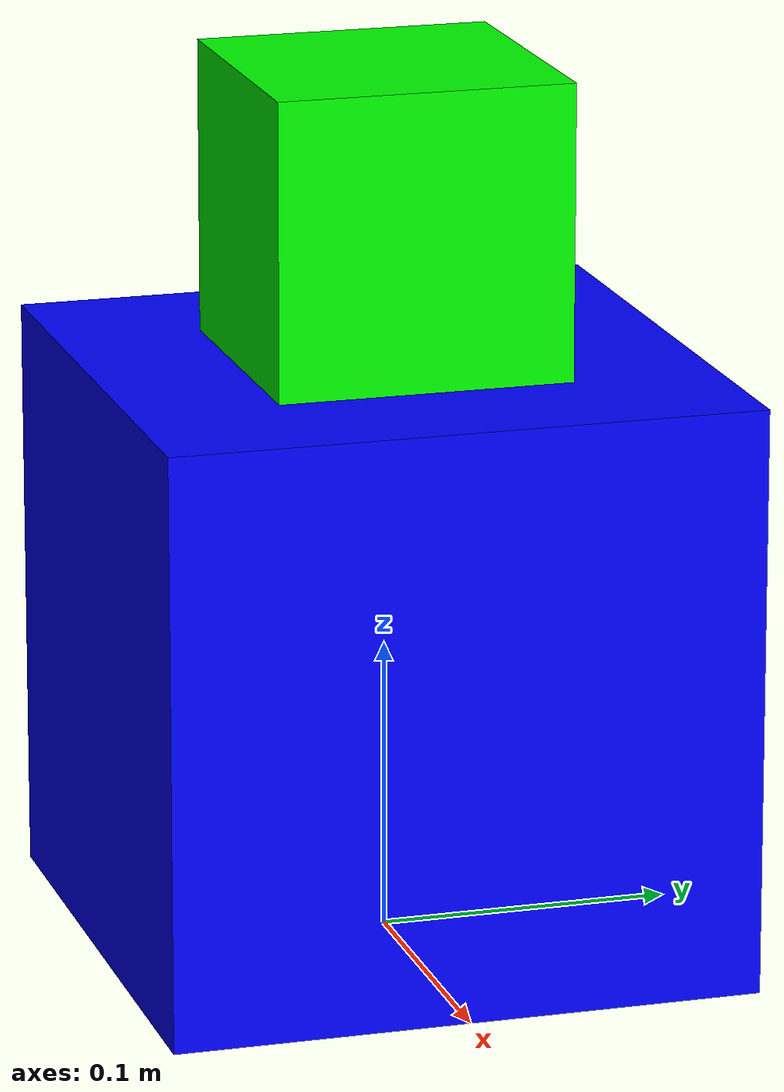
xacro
<?xml version="1.0"?>
<robot xmlns:xacro="http://ros.org/wiki/xacro" name="template_robot">

  <xacro:include filename="$(find robot_description)/urdf/robot_arguments.xacro" />
  <xacro:include filename="$(find robot_description)/urdf/blue_box.xacro" />
  <xacro:include filename="$(find robot_description)/urdf/green_box.xacro" />

</robot>

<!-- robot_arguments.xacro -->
<robot xmlns:xacro="http://ros.org/wiki/xacro">

    <xacro:arg name="green_box" default="true" />
    <xacro:property name="green_box" value="$(arg green_box)" />

</robot>

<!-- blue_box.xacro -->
<robot xmlns:xacro="http://ros.org/wiki/xacro">

    <!-- Reference point on the ground -->
    <link name="base_footprint" />

    <!-- Base body (blue box) -->
    <link name="base_link">
        <visual>
            <geometry>
                <box size="0.2 0.2 0.2" />
            </geometry>
            <material name="blue">
                <color rgba="0.0 0.0 1.0 1.0" />
            </material>
        </visual>
    </link>

    <!-- Attach base_link to base_footprint (so the robot sits on the ground) -->
    <joint name="base_footprint_to_base_link" type="fixed">
        <parent link="base_footprint" />
        <child link="base_link" />
        <origin xyz="0 0 0.1" rpy="0 0 0" />
    </joint>

</robot>

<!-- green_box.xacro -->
<robot xmlns:xacro="http://ros.org/wiki/xacro">

    <xacro:if value="${green_box}">

        <link name="moving_link">
            <visual>
                <geometry>
                    <box size="0.1 0.1 0.1" />
                </geometry>
                <material name="green">
                    <color rgba="0.0 1.0 0.0 1.0" />
                </material>
            </visual>
        </link>

        <!-- Movable joint: rotates the green box around Z axis -->
        <joint name="base_to_moving_joint" type="revolute">
            <parent link="base_link" />
            <child link="moving_link" />
            <!-- Place the moving_link slightly to the side and above the base -->
            <origin xyz="0 0 0.15" rpy="0 0 0" />
            <!-- Rotation axis Z -->
            <axis xyz="0 0 1" />
            <!-- Limits: +/- 90 degrees -->
            <limit effort="10" velocity="1.0" lower="-1.57" upper="1.57" />
        </joint>

    </xacro:if>

</robot>
